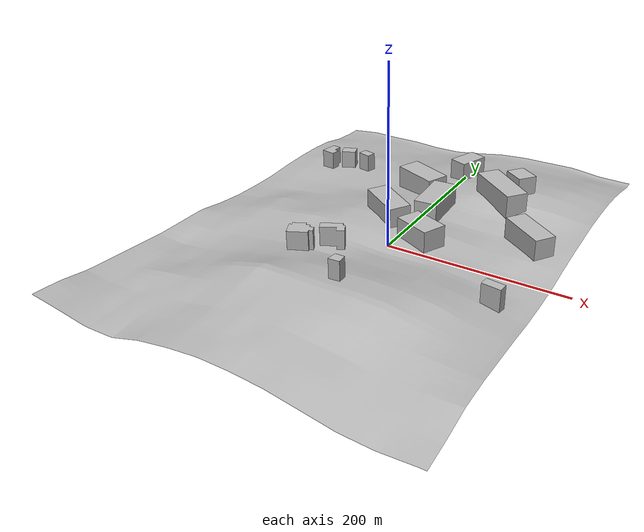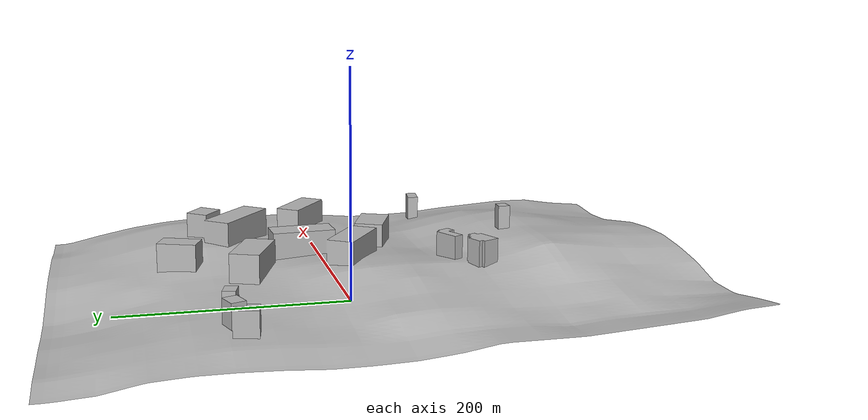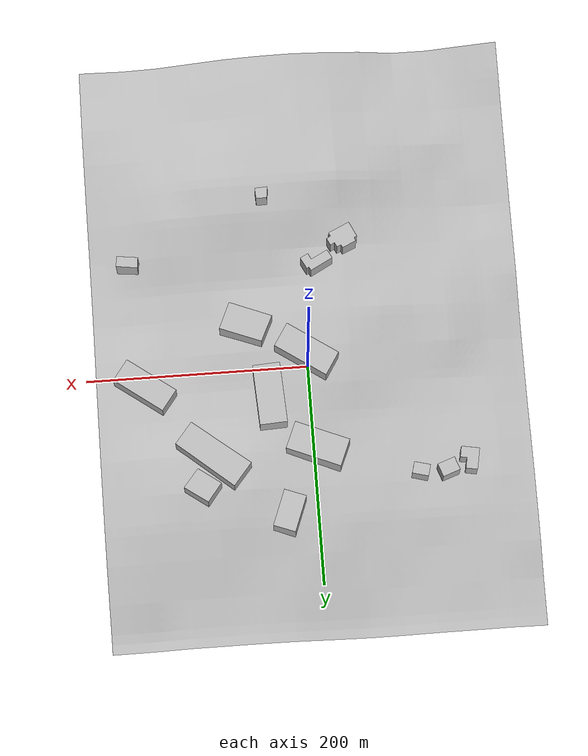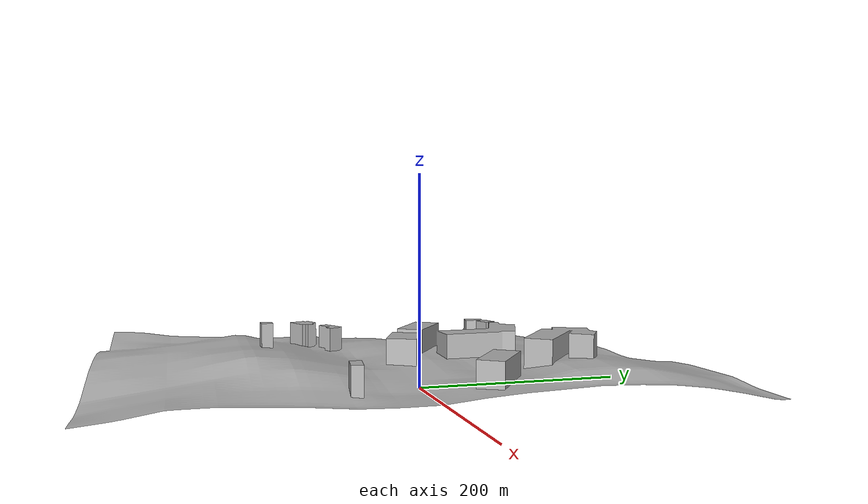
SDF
<?xml version='1.0'?>
<sdf version='1.6'>
  <model name='faculty_meshes'>
    <static>true</static>
    <link name='terrain_link'>
      <visual name='terrain_visual'>
        <geometry>
          <mesh>
            <uri>model://faculty_meshes/terrain.dae</uri>
          </mesh>
        </geometry>
      </visual>
    </link>
    <link name='buildings_link'>
      <visual name='buildings_visual'>
        <geometry>
          <mesh>
            <uri>model://faculty_meshes/buildings.dae</uri>
          </mesh>
        </geometry>
      </visual>
    </link>
  </model>
</sdf>
